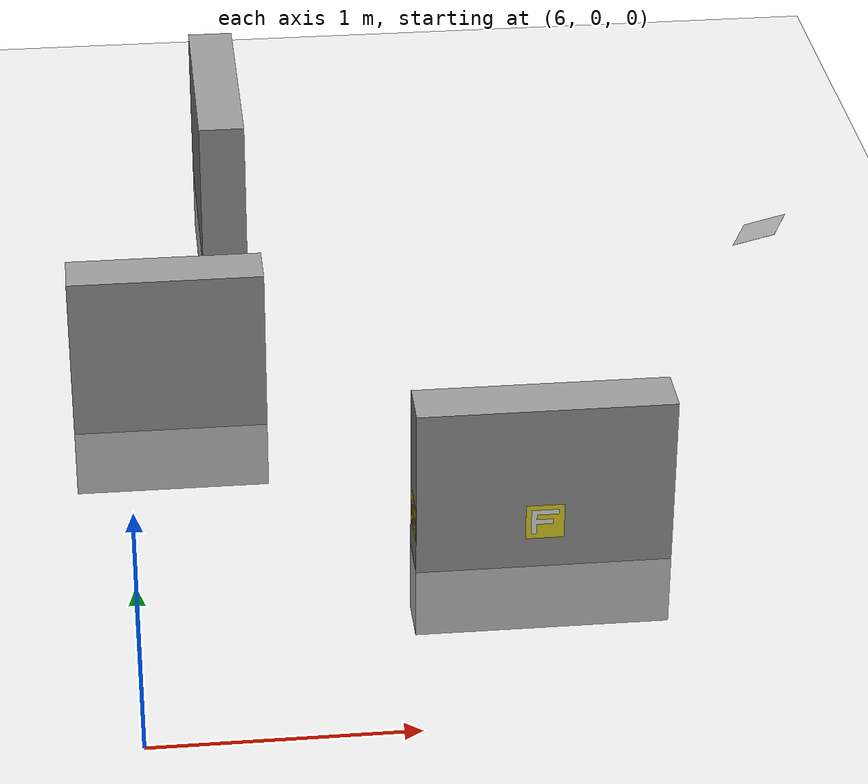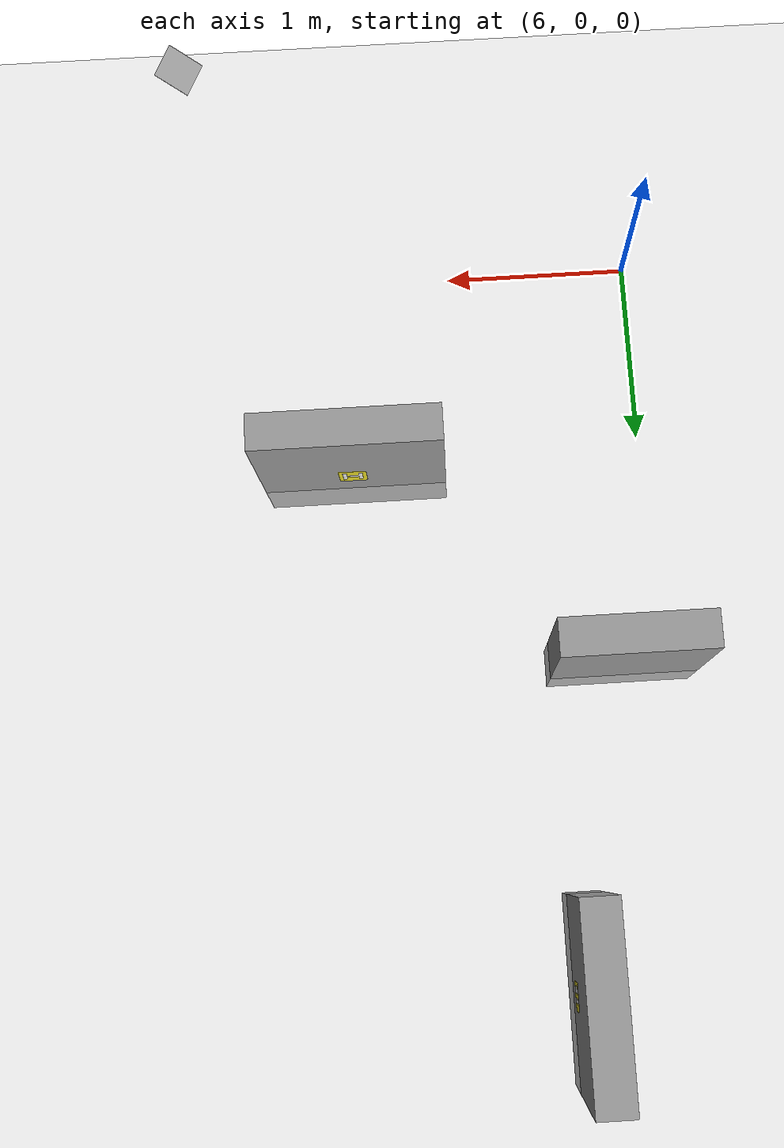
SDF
<sdf version="1.6">
 <world name="default">
  <model name="ground_plane">
   <static>1</static>
   <link name="link">
    <collision name="collision">
     <geometry><plane><normal>0 0 1</normal><size>100 100</size></plane></geometry>
     <surface><friction><ode><mu>100</mu><mu2>50</mu2></ode></friction></surface>
    </collision>
    <visual name="visual">
     <cast_shadows>0</cast_shadows>
     <geometry><plane><normal>0 0 1</normal><size>100 100</size></plane></geometry>
     <material>
      <script><uri>file://media/materials/scripts/gazebo.material</uri><name>Gazebo/Gray</name></script>
     </material>
    </visual>
   </link>
  </model>
  <model name="Untitled1_clone">
   <pose>6.48 3.98 0 0 -0 0</pose>
   <link name="Wall_0">
    <collision name="Wall_0_Collision">
     <geometry><box><size>1 0.2 1</size></box></geometry>
     <pose>0 0 0.2 0 -0 0</pose>
    </collision>
    <visual name="Wall_0_Visual">
     <pose>0 0 0.2 0 -0 0</pose>
     <geometry><box><size>1 0.2 1</size></box></geometry>
     <material>
      <script><uri>file://media/materials/scripts/gazebo.material</uri><name>Gazebo/Gray</name></script>
      <ambient>1 1 1 1</ambient>
     </material>
     <meta><layer>0</layer></meta>
    </visual>
    <pose>0 0 0 0 -0 1.5708</pose>
   </link>
   <static>1</static>
  </model>
  <model name="Untitled1_clone_0_clone">
   <pose>7.58 1.1 0 0 0 -1.5708</pose>
   <link name="Wall_0">
    <collision name="Wall_0_Collision">
     <geometry><box><size>1 0.2 1</size></box></geometry>
     <pose>0 0 0.2 0 -0 0</pose>
    </collision>
    <visual name="Wall_0_Visual">
     <pose>0 0 0.2 0 -0 0</pose>
     <geometry><box><size>1 0.2 1</size></box></geometry>
     <material>
      <script><uri>file://media/materials/scripts/gazebo.material</uri><name>Gazebo/Gray</name></script>
      <ambient>1 1 1 1</ambient>
     </material>
     <meta><layer>0</layer></meta>
    </visual>
    <pose>0 0 0 0 -0 1.5708</pose>
   </link>
   <static>1</static>
  </model>
  <model name="Untitled3_clone">
   <pose>6.18 2.24 0 0 -0 0</pose>
   <link name="Wall_17">
    <collision name="Wall_17_Collision">
     <geometry><box><size>0.8 0.2 1</size></box></geometry>
     <pose>0 0 0.2 0 -0 0</pose>
    </collision>
    <visual name="Wall_17_Visual">
     <pose>0 0 0.2 0 -0 0</pose>
     <geometry><box><size>0.8 0.2 1</size></box></geometry>
     <material>
      <script><uri>file://media/materials/scripts/gazebo.material</uri><name>Gazebo/Gray</name></script>
      <ambient>1 1 1 1</ambient>
     </material>
     <meta><layer>0</layer></meta>
    </visual>
   </link>
   <static>1</static>
  </model>
  <model name="labal_F">
   <link name="base">
    <inertial>
     <pose>-0.001086 -0.000137 -0.001593 0 -0 0</pose>
     <mass>0.0137688</mass>
     <inertia>
      <ixx>2.44128e-05</ixx>
      <ixy>-9.16282e-09</ixy>
      <ixz>4.39336e-07</ixz>
      <iyy>2.60674e-05</iyy>
      <iyz>-1.55543e-08</iyz>
      <izz>4.38445e-05</izz>
     </inertia>
    </inertial>
    <collision name="base_collision">
     <geometry>
      <mesh><scale>1 1 1</scale><uri>/home/tdt/catkin_ws/src/RoboRTS/small_car/meshes/base.STL</uri></mesh>
     </geometry>
    </collision>
    <collision name="base_fixed_joint_lump__labal_F_collision_1">
     <pose>0 0 0 1.5708 -0 0</pose>
     <geometry>
      <mesh><scale>1 1 1</scale><uri>/home/tdt/catkin_ws/src/RoboRTS/small_car/meshes/labal_F.STL</uri></mesh>
     </geometry>
    </collision>
    <visual name="base_visual">
     <geometry>
      <mesh><scale>1 1 1</scale><uri>/home/tdt/catkin_ws/src/RoboRTS/small_car/meshes/base.STL</uri></mesh>
     </geometry>
     <material>
      <script><name>Gazebo/Yellow</name><uri>file://media/materials/scripts/gazebo.material</uri></script>
     </material>
    </visual>
    <visual name="base_fixed_joint_lump__labal_F_visual_1">
     <pose>0 0 0 1.5708 -0 0</pose>
     <geometry>
      <mesh><scale>1 1 1</scale><uri>/home/tdt/catkin_ws/src/RoboRTS/small_car/meshes/labal_F.STL</uri></mesh>
     </geometry>
     <material>
      <script><name>Gazebo/White</name><uri>file://media/materials/scripts/gazebo.material</uri></script>
     </material>
    </visual>
   </link>
   <pose>7.58 1 0.2 0 -0 0</pose>
   <static>1</static>
  </model>
  <model name="labal_G">
   <link name="base">
    <inertial>
     <pose>-0.001086 -0.000137 -0.001593 0 -0 0</pose>
     <mass>0.0137688</mass>
     <inertia>
      <ixx>2.44128e-05</ixx>
      <ixy>-9.16282e-09</ixy>
      <ixz>4.39336e-07</ixz>
      <iyy>2.60674e-05</iyy>
      <iyz>-1.55543e-08</iyz>
      <izz>4.38445e-05</izz>
     </inertia>
    </inertial>
    <collision name="base_collision">
     <geometry>
      <mesh><scale>1 1 1</scale><uri>/home/tdt/catkin_ws/src/RoboRTS/small_car/meshes/base.STL</uri></mesh>
     </geometry>
    </collision>
    <collision name="base_fixed_joint_lump__labal_G_collision_1">
     <pose>0 0 0 1.5708 -0 0</pose>
     <geometry>
      <mesh><scale>1 1 1</scale><uri>/home/tdt/catkin_ws/src/RoboRTS/small_car/meshes/labal_G.STL</uri></mesh>
     </geometry>
    </collision>
    <visual name="base_visual">
     <geometry>
      <mesh><scale>1 1 1</scale><uri>/home/tdt/catkin_ws/src/RoboRTS/small_car/meshes/base.STL</uri></mesh>
     </geometry>
     <material>
      <script><name>Gazebo/Yellow</name><uri>file://media/materials/scripts/gazebo.material</uri></script>
     </material>
    </visual>
    <visual name="base_fixed_joint_lump__labal_G_visual_1">
     <pose>0 0 0 1.5708 -0 0</pose>
     <geometry>
      <mesh><scale>1 1 1</scale><uri>/home/tdt/catkin_ws/src/RoboRTS/small_car/meshes/labal_G.STL</uri></mesh>
     </geometry>
     <material>
      <script><name>Gazebo/White</name><uri>file://media/materials/scripts/gazebo.material</uri></script>
     </material>
    </visual>
   </link>
   <pose>7.08 1.1 0.2 0 0 -1.57</pose>
   <static>1</static>
  </model>
  <model name="labal_H">
   <link name="base">
    <inertial>
     <pose>-0.001086 -0.000137 -0.001593 0 -0 0</pose>
     <mass>0.0137688</mass>
     <inertia>
      <ixx>2.44128e-05</ixx>
      <ixy>-9.16282e-09</ixy>
      <ixz>4.39336e-07</ixz>
      <iyy>2.60674e-05</iyy>
      <iyz>-1.55543e-08</iyz>
      <izz>4.38445e-05</izz>
     </inertia>
    </inertial>
    <collision name="base_collision">
     <geometry>
      <mesh><scale>1 1 1</scale><uri>/home/tdt/catkin_ws/src/RoboRTS/small_car/meshes/base.STL</uri></mesh>
     </geometry>
    </collision>
    <collision name="base_fixed_joint_lump__labal_H_collision_1">
     <pose>0 0 0 1.5708 -0 0</pose>
     <geometry>
      <mesh><scale>1 1 1</scale><uri>/home/tdt/catkin_ws/src/RoboRTS/small_car/meshes/labal_H.STL</uri></mesh>
     </geometry>
    </collision>
    <visual name="base_visual">
     <geometry>
      <mesh><scale>1 1 1</scale><uri>/home/tdt/catkin_ws/src/RoboRTS/small_car/meshes/base.STL</uri></mesh>
     </geometry>
     <material>
      <script><name>Gazebo/Yellow</name><uri>file://media/materials/scripts/gazebo.material</uri></script>
     </material>
    </visual>
    <visual name="base_fixed_joint_lump__labal_H_visual_1">
     <pose>0 0 0 1.5708 -0 0</pose>
     <geometry>
      <mesh><scale>1 1 1</scale><uri>/home/tdt/catkin_ws/src/RoboRTS/small_car/meshes/labal_H.STL</uri></mesh>
     </geometry>
     <material>
      <script><name>Gazebo/White</name><uri>file://media/materials/scripts/gazebo.material</uri></script>
     </material>
    </visual>
   </link>
   <pose>7.58 1.2 0.2 0 -0 3.14</pose>
   <static>1</static>
  </model>
  <model name="labal_E">
   <link name="base">
    <inertial>
     <pose>-0.001086 -0.000137 -0.001593 0 -0 0</pose>
     <mass>0.0137688</mass>
     <inertia>
      <ixx>2.44128e-05</ixx>
      <ixy>-9.16282e-09</ixy>
      <ixz>4.39336e-07</ixz>
      <iyy>2.60674e-05</iyy>
      <iyz>-1.55543e-08</iyz>
      <izz>4.38445e-05</izz>
     </inertia>
    </inertial>
    <collision name="base_collision">
     <geometry>
      <mesh><scale>1 1 1</scale><uri>/home/tdt/catkin_ws/src/RoboRTS/small_car/meshes/base.STL</uri></mesh>
     </geometry>
    </collision>
    <collision name="base_fixed_joint_lump__labal_E_collision_1">
     <pose>0 0 0 1.5708 -0 0</pose>
     <geometry>
      <mesh><scale>1 1 1</scale><uri>/home/tdt/catkin_ws/src/RoboRTS/small_car/meshes/labal_E.STL</uri></mesh>
     </geometry>
    </collision>
    <visual name="base_visual">
     <geometry>
      <mesh><scale>1 1 1</scale><uri>/home/tdt/catkin_ws/src/RoboRTS/small_car/meshes/base.STL</uri></mesh>
     </geometry>
     <material>
      <script><name>Gazebo/Yellow</name><uri>file://media/materials/scripts/gazebo.material</uri></script>
     </material>
    </visual>
    <visual name="base_fixed_joint_lump__labal_E_visual_1">
     <pose>0 0 0 1.5708 -0 0</pose>
     <geometry>
      <mesh><scale>1 1 1</scale><uri>/home/tdt/catkin_ws/src/RoboRTS/small_car/meshes/labal_E.STL</uri></mesh>
     </geometry>
     <material>
      <script><name>Gazebo/White</name><uri>file://media/materials/scripts/gazebo.material</uri></script>
     </material>
    </visual>
   </link>
   <pose>6.58 3.98 0.2 0 -0 1.57</pose>
   <static>1</static>
  </model>
  <model name="sentry1">
   <link name="sentry1">
    <inertial>
     <pose>0.050669 -0.050669 0.67531 0 -0 0</pose>
     <mass>1.1807</mass>
     <inertia>
      <ixx>0.52915</ixx>
      <ixy>-0.0019526</ixy>
      <ixz>0.03191</ixz>
      <iyy>0.52915</iyy>
      <iyz>0.03191</iyz>
      <izz>0.027533</izz>
     </inertia>
    </inertial>
    <collision name="sentry1_collision">
     <pose>0 0 0 1.5708 -0 0</pose>
     <geometry>
      <mesh><scale>1 1 1</scale><uri>/home/tdt/catkin_ws/src/RoboRTS/small_car/meshes/base.STL</uri></mesh>
     </geometry>
    </collision>
    <visual name="sentry1_visual">
     <pose>0 0 0 1.5708 -0 0</pose>
     <geometry>
      <mesh><scale>1 1 1</scale><uri>/home/tdt/catkin_ws/src/RoboRTS/small_car/meshes/base.STL</uri></mesh>
     </geometry>
     <material><script><uri>__default__</uri><name>__default__</name></script></material>
    </visual>
    <sensor name="camera1" type="depth">
     <update_rate>100</update_rate>
     <camera name="back_camera1">
      <horizontal_fov>0.9</horizontal_fov>
      <image><width>1440</width><height>1080</height><format>R8G8B8</format></image>
      <clip><near>0.1</near><far>100</far></clip>
      <noise><type>gaussian</type><mean>0</mean><stddev>0.007</stddev></noise>
     </camera>
     <plugin name="camera_controller" filename="libgazebo_ros_openni_kinect.so">
      <alwaysOn>true</alwaysOn>
      <updateRate>100</updateRate>
      <cameraName>back_camera1</cameraName>
      <frameName>sentry1</frameName>
      <imageTopicName>image_raw</imageTopicName>
      <cameraInfoTopicName>camera_info</cameraInfoTopicName>
      <hackBaseline>0.07</hackBaseline>
      <distortionK1>0.0</distortionK1>
      <distortionK2>0.0</distortionK2>
      <distortionK3>0.0</distortionK3>
      <distortionT1>0.0</distortionT1>
      <distortionT2>0.0</distortionT2>
     </plugin>
    </sensor>
   </link>
   <pose>8.1 -0.02 2 0 0.45 2.7</pose>
   <static>1</static>
  </model>
 </world>
</sdf>
